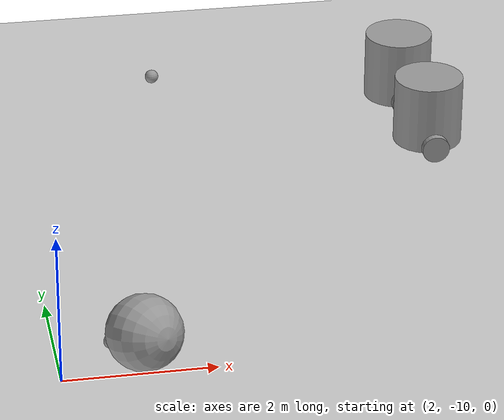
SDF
<sdf version="1.6">
 <world name="default">
  <model name="ground_plane">
   <static>1</static>
   <link name="link">
    <collision name="collision">
     <geometry><plane><normal>0 0 1</normal><size>100 100</size></plane></geometry>
     <surface>
      <contact><collide_bitmask>65535</collide_bitmask></contact>
      <friction><ode><mu>100</mu><mu2>50</mu2></ode></friction>
     </surface>
    </collision>
    <visual name="visual">
     <cast_shadows>0</cast_shadows>
     <geometry><plane><normal>0 0 1</normal><size>100 100</size></plane></geometry>
     <material>
      <script><uri>file://media/materials/scripts/gazebo.material</uri><name>Gazebo/Grey</name></script>
     </material>
    </visual>
   </link>
  </model>
  <model name="gazeboy01">
   <model name="gazeboy01">
    <link name="link_0_0">
     <pose>0 0 0.2 0 -0 0</pose>
     <inertial>
      <mass>1</mass>
      <inertia><ixx>0.145833</ixx><ixy>0</ixy><ixz>0</ixz><iyy>0.145833</iyy><iyz>0</iyz><izz>0.125</izz></inertia>
     </inertial>
     <visual name="visual">
      <geometry><cylinder><radius>0.5</radius><length>1</length></cylinder></geometry>
      <material>
       <lighting>1</lighting>
       <script><uri>file://media/materials/scripts/gazebo.material</uri><name>Gazebo/Grey</name></script>
       <shader type="pixel"><normal_map>__default__</normal_map></shader>
       <ambient>0.3 0.3 0.3 1</ambient>
       <diffuse>0.7 0.7 0.7 1</diffuse>
       <specular>0.01 0.01 0.01 1</specular>
       <emissive>0 0 0 1</emissive>
      </material>
     </visual>
     <collision name="collision">
      <geometry><cylinder><radius>0.5</radius><length>1</length></cylinder></geometry>
      <surface>
       <friction>
        <ode><mu>1</mu><mu2>1</mu2><fdir1>0 0 0</fdir1><slip1>0</slip1><slip2>0</slip2></ode>
        <torsional>
         <coefficient>1</coefficient>
         <patch_radius>0</patch_radius>
         <surface_radius>0</surface_radius>
         <use_patch_radius>1</use_patch_radius>
         <ode><slip>0</slip></ode>
        </torsional>
       </friction>
       <bounce><restitution_coefficient>0</restitution_coefficient><threshold>1e+06</threshold></bounce>
       <contact>
        <collide_without_contact>0</collide_without_contact>
        <collide_without_contact_bitmask>1</collide_without_contact_bitmask>
        <collide_bitmask>1</collide_bitmask>
        <ode>
         <soft_cfm>0</soft_cfm>
         <soft_erp>0.2</soft_erp>
         <kp>1e+13</kp>
         <kd>1</kd>
         <max_vel>0.01</max_vel>
         <min_depth>0</min_depth>
        </ode>
        <bullet>
         <split_impulse>1</split_impulse>
         <split_impulse_penetration_threshold>-0.01</split_impulse_penetration_threshold>
         <soft_cfm>0</soft_cfm>
         <soft_erp>0.2</soft_erp>
         <kp>1e+13</kp>
         <kd>1</kd>
        </bullet>
       </contact>
      </surface>
     </collision>
    </link>
    <link name="link_1">
     <pose>-0 -0.550019 -0.2 1.5707 -0 0</pose>
     <inertial>
      <mass>1</mass>
      <inertia><ixx>0.145833</ixx><ixy>0</ixy><ixz>0</ixz><iyy>0.145833</iyy><iyz>0</iyz><izz>0.125</izz></inertia>
     </inertial>
     <visual name="visual">
      <geometry><cylinder><radius>0.2</radius><length>0.1</length></cylinder></geometry>
      <material>
       <lighting>1</lighting>
       <script><uri>file://media/materials/scripts/gazebo.material</uri><name>Gazebo/Grey</name></script>
       <shader type="pixel"><normal_map>__default__</normal_map></shader>
       <ambient>0.3 0.3 0.3 1</ambient>
       <diffuse>0.7 0.7 0.7 1</diffuse>
       <specular>0.01 0.01 0.01 1</specular>
       <emissive>0 0 0 1</emissive>
      </material>
     </visual>
     <collision name="collision">
      <geometry><cylinder><radius>0.2</radius><length>0.1</length></cylinder></geometry>
      <surface>
       <friction>
        <ode><mu>1</mu><mu2>1</mu2><fdir1>0 0 0</fdir1><slip1>0</slip1><slip2>0</slip2></ode>
        <torsional>
         <coefficient>1</coefficient>
         <patch_radius>0</patch_radius>
         <surface_radius>0</surface_radius>
         <use_patch_radius>1</use_patch_radius>
         <ode><slip>0</slip></ode>
        </torsional>
       </friction>
       <bounce><restitution_coefficient>0</restitution_coefficient><threshold>1e+06</threshold></bounce>
       <contact>
        <collide_without_contact>0</collide_without_contact>
        <collide_without_contact_bitmask>1</collide_without_contact_bitmask>
        <collide_bitmask>1</collide_bitmask>
        <ode>
         <soft_cfm>0</soft_cfm>
         <soft_erp>0.2</soft_erp>
         <kp>1e+13</kp>
         <kd>1</kd>
         <max_vel>0.01</max_vel>
         <min_depth>0</min_depth>
        </ode>
        <bullet>
         <split_impulse>1</split_impulse>
         <split_impulse_penetration_threshold>-0.01</split_impulse_penetration_threshold>
         <soft_cfm>0</soft_cfm>
         <soft_erp>0.2</soft_erp>
         <kp>1e+13</kp>
         <kd>1</kd>
        </bullet>
       </contact>
      </surface>
     </collision>
    </link>
    <link name="link_1_clone">
     <pose>0 0.550019 -0.25 1.5707 -0 0</pose>
     <inertial>
      <mass>1</mass>
      <inertia><ixx>0.145833</ixx><ixy>0</ixy><ixz>0</ixz><iyy>0.145833</iyy><iyz>0</iyz><izz>0.125</izz></inertia>
     </inertial>
     <visual name="visual">
      <geometry><cylinder><radius>0.2</radius><length>0.1</length></cylinder></geometry>
      <material>
       <lighting>1</lighting>
       <script><uri>file://media/materials/scripts/gazebo.material</uri><name>Gazebo/Grey</name></script>
       <shader type="pixel"><normal_map>__default__</normal_map></shader>
       <ambient>0.3 0.3 0.3 1</ambient>
       <diffuse>0.7 0.7 0.7 1</diffuse>
       <specular>0.01 0.01 0.01 1</specular>
       <emissive>0 0 0 1</emissive>
      </material>
     </visual>
     <collision name="collision">
      <geometry><cylinder><radius>0.2</radius><length>0.1</length></cylinder></geometry>
      <surface>
       <friction>
        <ode><mu>1</mu><mu2>1</mu2><fdir1>0 0 0</fdir1><slip1>0</slip1><slip2>0</slip2></ode>
        <torsional>
         <coefficient>1</coefficient>
         <patch_radius>0</patch_radius>
         <surface_radius>0</surface_radius>
         <use_patch_radius>1</use_patch_radius>
         <ode><slip>0</slip></ode>
        </torsional>
       </friction>
       <bounce><restitution_coefficient>0</restitution_coefficient><threshold>1e+06</threshold></bounce>
       <contact>
        <collide_without_contact>0</collide_without_contact>
        <collide_without_contact_bitmask>1</collide_without_contact_bitmask>
        <collide_bitmask>1</collide_bitmask>
        <ode>
         <soft_cfm>0</soft_cfm>
         <soft_erp>0.2</soft_erp>
         <kp>1e+13</kp>
         <kd>1</kd>
         <max_vel>0.01</max_vel>
         <min_depth>0</min_depth>
        </ode>
        <bullet>
         <split_impulse>1</split_impulse>
         <split_impulse_penetration_threshold>-0.01</split_impulse_penetration_threshold>
         <soft_cfm>0</soft_cfm>
         <soft_erp>0.2</soft_erp>
         <kp>1e+13</kp>
         <kd>1</kd>
        </bullet>
       </contact>
      </surface>
     </collision>
    </link>
    <joint name="link_0_0_JOINT_0" type="revolute">
     <parent>link_0_0</parent>
     <child>link_1</child>
     <axis>
      <xyz>0 0 1</xyz>
      <use_parent_model_frame>0</use_parent_model_frame>
      <limit>
       <lower>-1.79769e+308</lower>
       <upper>1.79769e+308</upper>
       <effort>-1</effort>
       <velocity>-1</velocity>
      </limit>
      <dynamics>
       <spring_reference>0</spring_reference>
       <spring_stiffness>0</spring_stiffness>
       <damping>0</damping>
       <friction>0</friction>
      </dynamics>
     </axis>
     <physics>
      <ode><limit><cfm>0</cfm><erp>0.2</erp></limit><suspension><cfm>0</cfm><erp>0.2</erp></suspension></ode>
     </physics>
    </joint>
    <joint name="link_0_0_JOINT_2" type="revolute">
     <parent>link_0_0</parent>
     <child>link_1_clone</child>
     <axis>
      <xyz>0 0 1</xyz>
      <use_parent_model_frame>0</use_parent_model_frame>
      <limit>
       <lower>-1.79769e+308</lower>
       <upper>1.79769e+308</upper>
       <effort>-1</effort>
       <velocity>-1</velocity>
      </limit>
      <dynamics>
       <spring_reference>0</spring_reference>
       <spring_stiffness>0</spring_stiffness>
       <damping>0</damping>
       <friction>0</friction>
      </dynamics>
     </axis>
     <physics>
      <ode><limit><cfm>0</cfm><erp>0.2</erp></limit><suspension><cfm>0</cfm><erp>0.2</erp></suspension></ode>
     </physics>
    </joint>
    <static>0</static>
    <pose>0.693182 0.382612 1.06345 0 -0 0</pose>
   </model>
   <static>0</static>
   <pose>7.32618 -2.7585 -0.652899 0.045419 -0 0</pose>
  </model>
  <model name="humaball">
   <link name="link_0">
    <pose>0.08022 -0.108763 -0.179417 0 -0 0</pose>
    <inertial>
     <mass>0.0180739</mass>
     <inertia>
      <ixx>0.00037297</ixx>
      <ixy>0</ixy>
      <ixz>0</ixz>
      <iyy>0.00037297</iyy>
      <iyz>0</iyz>
      <izz>8.726e-05</izz>
     </inertia>
    </inertial>
    <visual name="visual">
     <geometry><cylinder><radius>0.0982653</radius><length>0.467615</length></cylinder></geometry>
     <material>
      <lighting>1</lighting>
      <script><uri>file://media/materials/scripts/gazebo.material</uri><name>Gazebo/Grey</name></script>
      <shader type="pixel"><normal_map>__default__</normal_map></shader>
      <ambient>0.3 0.3 0.3 1</ambient>
      <diffuse>0.7 0.7 0.7 1</diffuse>
      <specular>0.01 0.01 0.01 1</specular>
      <emissive>0 0 0 1</emissive>
     </material>
    </visual>
    <collision name="collision">
     <geometry><cylinder><radius>0.098265</radius><length>0.467615</length></cylinder></geometry>
     <surface>
      <friction>
       <ode><mu>1</mu><mu2>1</mu2><fdir1>0 0 0</fdir1><slip1>0</slip1><slip2>0</slip2></ode>
       <torsional>
        <coefficient>1</coefficient>
        <patch_radius>0</patch_radius>
        <surface_radius>0</surface_radius>
        <use_patch_radius>1</use_patch_radius>
        <ode><slip>0</slip></ode>
       </torsional>
      </friction>
      <bounce><restitution_coefficient>0</restitution_coefficient><threshold>1e+06</threshold></bounce>
      <contact>
       <collide_without_contact>0</collide_without_contact>
       <collide_without_contact_bitmask>1</collide_without_contact_bitmask>
       <collide_bitmask>1</collide_bitmask>
       <ode>
        <soft_cfm>0</soft_cfm>
        <soft_erp>0.2</soft_erp>
        <kp>1e+13</kp>
        <kd>1</kd>
        <max_vel>0.01</max_vel>
        <min_depth>0</min_depth>
       </ode>
       <bullet>
        <split_impulse>1</split_impulse>
        <split_impulse_penetration_threshold>-0.01</split_impulse_penetration_threshold>
        <soft_cfm>0</soft_cfm>
        <soft_erp>0.2</soft_erp>
        <kp>1e+13</kp>
        <kd>1</kd>
       </bullet>
      </contact>
     </surface>
    </collision>
   </link>
   <link name="link_0_clone">
    <pose>0.076453 0.143831 -0.179417 0 -0 0</pose>
    <inertial>
     <mass>0.0180739</mass>
     <inertia>
      <ixx>0.000372973</ixx>
      <ixy>0</ixy>
      <ixz>0</ixz>
      <iyy>0.000372973</iyy>
      <iyz>0</iyz>
      <izz>8.72612e-05</izz>
     </inertia>
    </inertial>
    <visual name="visual">
     <geometry><cylinder><radius>0.0982653</radius><length>0.467615</length></cylinder></geometry>
     <material>
      <lighting>1</lighting>
      <script><uri>file://media/materials/scripts/gazebo.material</uri><name>Gazebo/Grey</name></script>
      <shader type="pixel"/>
      <ambient>0.3 0.3 0.3 1</ambient>
      <diffuse>0.7 0.7 0.7 1</diffuse>
      <specular>0.01 0.01 0.01 1</specular>
      <emissive>0 0 0 1</emissive>
     </material>
    </visual>
    <collision name="collision">
     <geometry><cylinder><radius>0.098265</radius><length>0.467615</length></cylinder></geometry>
     <surface>
      <friction>
       <ode><mu>1</mu><mu2>1</mu2><fdir1>0 0 0</fdir1><slip1>0</slip1><slip2>0</slip2></ode>
       <torsional>
        <coefficient>1</coefficient>
        <patch_radius>0</patch_radius>
        <surface_radius>0</surface_radius>
        <use_patch_radius>1</use_patch_radius>
        <ode><slip>0</slip></ode>
       </torsional>
      </friction>
      <bounce><restitution_coefficient>0</restitution_coefficient><threshold>1e+06</threshold></bounce>
      <contact>
       <collide_without_contact>0</collide_without_contact>
       <collide_without_contact_bitmask>1</collide_without_contact_bitmask>
       <collide_bitmask>1</collide_bitmask>
       <ode>
        <soft_cfm>0</soft_cfm>
        <soft_erp>0.2</soft_erp>
        <kp>1e+13</kp>
        <kd>1</kd>
        <max_vel>0.01</max_vel>
        <min_depth>0</min_depth>
       </ode>
       <bullet>
        <split_impulse>1</split_impulse>
        <split_impulse_penetration_threshold>-0.01</split_impulse_penetration_threshold>
        <soft_cfm>0</soft_cfm>
        <soft_erp>0.2</soft_erp>
        <kp>1e+13</kp>
        <kd>1</kd>
       </bullet>
      </contact>
     </surface>
    </collision>
   </link>
   <link name="link_1">
    <pose>-0.156668 -0.035071 0.35883 0 -0 0</pose>
    <inertial>
     <mass>1</mass>
     <inertia><ixx>0.1</ixx><ixy>0</ixy><ixz>0</ixz><iyy>0.1</iyy><iyz>0</iyz><izz>0.1</izz></inertia>
    </inertial>
    <visual name="visual">
     <geometry><sphere><radius>0.5</radius></sphere></geometry>
     <material>
      <lighting>1</lighting>
      <script><uri>file://media/materials/scripts/gazebo.material</uri><name>Gazebo/Grey</name></script>
      <shader type="pixel"/>
      <ambient>0.3 0.3 0.3 1</ambient>
      <diffuse>0.7 0.7 0.7 1</diffuse>
      <specular>0.01 0.01 0.01 1</specular>
      <emissive>0 0 0 1</emissive>
     </material>
    </visual>
    <collision name="collision">
     <geometry><sphere><radius>0.5</radius></sphere></geometry>
     <surface>
      <friction>
       <ode><mu>1</mu><mu2>1</mu2><fdir1>0 0 0</fdir1><slip1>0</slip1><slip2>0</slip2></ode>
       <torsional>
        <coefficient>1</coefficient>
        <patch_radius>0</patch_radius>
        <surface_radius>0</surface_radius>
        <use_patch_radius>1</use_patch_radius>
        <ode><slip>0</slip></ode>
       </torsional>
      </friction>
      <bounce><restitution_coefficient>0</restitution_coefficient><threshold>1e+06</threshold></bounce>
      <contact>
       <collide_without_contact>0</collide_without_contact>
       <collide_without_contact_bitmask>1</collide_without_contact_bitmask>
       <collide_bitmask>1</collide_bitmask>
       <ode>
        <soft_cfm>0</soft_cfm>
        <soft_erp>0.2</soft_erp>
        <kp>1e+13</kp>
        <kd>1</kd>
        <max_vel>0.01</max_vel>
        <min_depth>0</min_depth>
       </ode>
       <bullet>
        <split_impulse>1</split_impulse>
        <split_impulse_penetration_threshold>-0.01</split_impulse_penetration_threshold>
        <soft_cfm>0</soft_cfm>
        <soft_erp>0.2</soft_erp>
        <kp>1e+13</kp>
        <kd>1</kd>
       </bullet>
      </contact>
     </surface>
    </collision>
   </link>
   <joint name="link_1_JOINT_1" type="fixed">
    <parent>link_1</parent>
    <child>link_0_clone</child>
    <physics>
     <ode><limit><cfm>0</cfm><erp>0.2</erp></limit><suspension><cfm>0</cfm><erp>0.2</erp></suspension></ode>
    </physics>
   </joint>
   <joint name="link_1_JOINT_2" type="fixed">
    <parent>link_1</parent>
    <child>link_0</child>
    <physics>
     <ode><limit><cfm>0</cfm><erp>0.2</erp></limit><suspension><cfm>0</cfm><erp>0.2</erp></suspension></ode>
    </physics>
   </joint>
   <static>0</static>
   <pose>2.97905 -9.52498 0.279126 0.673066 1.29655 -0.364809</pose>
  </model>
  <model name="gazeboy01_clone">
   <model name="gazeboy01">
    <link name="link_0_0">
     <pose>0 0 0.2 0 -0 0</pose>
     <inertial>
      <mass>1</mass>
      <inertia><ixx>0.145833</ixx><ixy>0</ixy><ixz>0</ixz><iyy>0.145833</iyy><iyz>0</iyz><izz>0.125</izz></inertia>
     </inertial>
     <visual name="visual">
      <geometry><cylinder><radius>0.5</radius><length>1</length></cylinder></geometry>
      <material>
       <lighting>1</lighting>
       <script><uri>file://media/materials/scripts/gazebo.material</uri><name>Gazebo/Grey</name></script>
       <shader type="pixel"><normal_map>__default__</normal_map></shader>
       <ambient>0.3 0.3 0.3 1</ambient>
       <diffuse>0.7 0.7 0.7 1</diffuse>
       <specular>0.01 0.01 0.01 1</specular>
       <emissive>0 0 0 1</emissive>
      </material>
     </visual>
     <collision name="collision">
      <geometry><cylinder><radius>0.5</radius><length>1</length></cylinder></geometry>
      <surface>
       <friction>
        <ode><mu>1</mu><mu2>1</mu2><fdir1>0 0 0</fdir1><slip1>0</slip1><slip2>0</slip2></ode>
        <torsional>
         <coefficient>1</coefficient>
         <patch_radius>0</patch_radius>
         <surface_radius>0</surface_radius>
         <use_patch_radius>1</use_patch_radius>
         <ode><slip>0</slip></ode>
        </torsional>
       </friction>
       <bounce><restitution_coefficient>0</restitution_coefficient><threshold>1e+06</threshold></bounce>
       <contact>
        <collide_without_contact>0</collide_without_contact>
        <collide_without_contact_bitmask>1</collide_without_contact_bitmask>
        <collide_bitmask>1</collide_bitmask>
        <ode>
         <soft_cfm>0</soft_cfm>
         <soft_erp>0.2</soft_erp>
         <kp>1e+13</kp>
         <kd>1</kd>
         <max_vel>0.01</max_vel>
         <min_depth>0</min_depth>
        </ode>
        <bullet>
         <split_impulse>1</split_impulse>
         <split_impulse_penetration_threshold>-0.01</split_impulse_penetration_threshold>
         <soft_cfm>0</soft_cfm>
         <soft_erp>0.2</soft_erp>
         <kp>1e+13</kp>
         <kd>1</kd>
        </bullet>
       </contact>
      </surface>
     </collision>
    </link>
    <link name="link_1">
     <pose>-0 -0.550019 -0.2 1.5707 -0 0</pose>
     <inertial>
      <mass>1</mass>
      <inertia><ixx>0.145833</ixx><ixy>0</ixy><ixz>0</ixz><iyy>0.145833</iyy><iyz>0</iyz><izz>0.125</izz></inertia>
     </inertial>
     <visual name="visual">
      <geometry><cylinder><radius>0.2</radius><length>0.1</length></cylinder></geometry>
      <material>
       <lighting>1</lighting>
       <script><uri>file://media/materials/scripts/gazebo.material</uri><name>Gazebo/Grey</name></script>
       <shader type="pixel"><normal_map>__default__</normal_map></shader>
       <ambient>0.3 0.3 0.3 1</ambient>
       <diffuse>0.7 0.7 0.7 1</diffuse>
       <specular>0.01 0.01 0.01 1</specular>
       <emissive>0 0 0 1</emissive>
      </material>
     </visual>
     <collision name="collision">
      <geometry><cylinder><radius>0.2</radius><length>0.1</length></cylinder></geometry>
      <surface>
       <friction>
        <ode><mu>1</mu><mu2>1</mu2><fdir1>0 0 0</fdir1><slip1>0</slip1><slip2>0</slip2></ode>
        <torsional>
         <coefficient>1</coefficient>
         <patch_radius>0</patch_radius>
         <surface_radius>0</surface_radius>
         <use_patch_radius>1</use_patch_radius>
         <ode><slip>0</slip></ode>
        </torsional>
       </friction>
       <bounce><restitution_coefficient>0</restitution_coefficient><threshold>1e+06</threshold></bounce>
       <contact>
        <collide_without_contact>0</collide_without_contact>
        <collide_without_contact_bitmask>1</collide_without_contact_bitmask>
        <collide_bitmask>1</collide_bitmask>
        <ode>
         <soft_cfm>0</soft_cfm>
         <soft_erp>0.2</soft_erp>
         <kp>1e+13</kp>
         <kd>1</kd>
         <max_vel>0.01</max_vel>
         <min_depth>0</min_depth>
        </ode>
        <bullet>
         <split_impulse>1</split_impulse>
         <split_impulse_penetration_threshold>-0.01</split_impulse_penetration_threshold>
         <soft_cfm>0</soft_cfm>
         <soft_erp>0.2</soft_erp>
         <kp>1e+13</kp>
         <kd>1</kd>
        </bullet>
       </contact>
      </surface>
     </collision>
    </link>
    <link name="link_1_clone">
     <pose>0 0.550019 -0.25 1.5707 -0 0</pose>
     <inertial>
      <mass>1</mass>
      <inertia><ixx>0.145833</ixx><ixy>0</ixy><ixz>0</ixz><iyy>0.145833</iyy><iyz>0</iyz><izz>0.125</izz></inertia>
     </inertial>
     <visual name="visual">
      <geometry><cylinder><radius>0.2</radius><length>0.1</length></cylinder></geometry>
      <material>
       <lighting>1</lighting>
       <script><uri>file://media/materials/scripts/gazebo.material</uri><name>Gazebo/Grey</name></script>
       <shader type="pixel"><normal_map>__default__</normal_map></shader>
       <ambient>0.3 0.3 0.3 1</ambient>
       <diffuse>0.7 0.7 0.7 1</diffuse>
       <specular>0.01 0.01 0.01 1</specular>
       <emissive>0 0 0 1</emissive>
      </material>
     </visual>
     <collision name="collision">
      <geometry><cylinder><radius>0.2</radius><length>0.1</length></cylinder></geometry>
      <surface>
       <friction>
        <ode><mu>1</mu><mu2>1</mu2><fdir1>0 0 0</fdir1><slip1>0</slip1><slip2>0</slip2></ode>
        <torsional>
         <coefficient>1</coefficient>
         <patch_radius>0</patch_radius>
         <surface_radius>0</surface_radius>
         <use_patch_radius>1</use_patch_radius>
         <ode><slip>0</slip></ode>
        </torsional>
       </friction>
       <bounce><restitution_coefficient>0</restitution_coefficient><threshold>1e+06</threshold></bounce>
       <contact>
        <collide_without_contact>0</collide_without_contact>
        <collide_without_contact_bitmask>1</collide_without_contact_bitmask>
        <collide_bitmask>1</collide_bitmask>
        <ode>
         <soft_cfm>0</soft_cfm>
         <soft_erp>0.2</soft_erp>
         <kp>1e+13</kp>
         <kd>1</kd>
         <max_vel>0.01</max_vel>
         <min_depth>0</min_depth>
        </ode>
        <bullet>
         <split_impulse>1</split_impulse>
         <split_impulse_penetration_threshold>-0.01</split_impulse_penetration_threshold>
         <soft_cfm>0</soft_cfm>
         <soft_erp>0.2</soft_erp>
         <kp>1e+13</kp>
         <kd>1</kd>
        </bullet>
       </contact>
      </surface>
     </collision>
    </link>
    <joint name="link_0_0_JOINT_0" type="revolute">
     <parent>link_0_0</parent>
     <child>link_1</child>
     <axis>
      <xyz>0 0 1</xyz>
      <use_parent_model_frame>0</use_parent_model_frame>
      <limit>
       <lower>-1.79769e+308</lower>
       <upper>1.79769e+308</upper>
       <effort>-1</effort>
       <velocity>-1</velocity>
      </limit>
      <dynamics>
       <spring_reference>0</spring_reference>
       <spring_stiffness>0</spring_stiffness>
       <damping>0</damping>
       <friction>0</friction>
      </dynamics>
     </axis>
     <physics>
      <ode><limit><cfm>0</cfm><erp>0.2</erp></limit><suspension><cfm>0</cfm><erp>0.2</erp></suspension></ode>
     </physics>
    </joint>
    <joint name="link_0_0_JOINT_2" type="revolute">
     <parent>link_0_0</parent>
     <child>link_1_clone</child>
     <axis>
      <xyz>0 0 1</xyz>
      <use_parent_model_frame>0</use_parent_model_frame>
      <limit>
       <lower>-1.79769e+308</lower>
       <upper>1.79769e+308</upper>
       <effort>-1</effort>
       <velocity>-1</velocity>
      </limit>
      <dynamics>
       <spring_reference>0</spring_reference>
       <spring_stiffness>0</spring_stiffness>
       <damping>0</damping>
       <friction>0</friction>
      </dynamics>
     </axis>
     <physics>
      <ode><limit><cfm>0</cfm><erp>0.2</erp></limit><suspension><cfm>0</cfm><erp>0.2</erp></suspension></ode>
     </physics>
    </joint>
    <static>0</static>
    <pose>0.693182 0.382612 1.06345 0 -0 0</pose>
   </model>
   <static>0</static>
   <pose>7.40117 -4.42182 -0.652899 0.045419 -0 0</pose>
  </model>
  <model name="my_ball">
   <link name="link_0">
    <inertial>
     <mass>1</mass>
     <inertia><ixx>0.1</ixx><ixy>0</ixy><ixz>0</ixz><iyy>0.1</iyy><iyz>0</iyz><izz>0.1</izz></inertia>
    </inertial>
    <visual name="visual">
     <geometry><sphere><radius>0.1</radius></sphere></geometry>
     <material>
      <lighting>1</lighting>
      <script><uri>file://media/materials/scripts/gazebo.material</uri><name>Gazebo/Grey</name></script>
      <shader type="pixel"><normal_map>__default__</normal_map></shader>
      <ambient>1 1 1 1</ambient>
      <diffuse>1 1 1 1</diffuse>
      <specular>1 1 1 1</specular>
      <emissive>1 1 1 1</emissive>
     </material>
    </visual>
    <collision name="collision">
     <geometry><sphere><radius>0.1</radius></sphere></geometry>
     <surface>
      <friction>
       <ode><mu>1</mu><mu2>1</mu2><fdir1>0 0 0</fdir1><slip1>0</slip1><slip2>0</slip2></ode>
       <torsional>
        <coefficient>1</coefficient>
        <patch_radius>0</patch_radius>
        <surface_radius>0</surface_radius>
        <use_patch_radius>1</use_patch_radius>
        <ode><slip>0</slip></ode>
       </torsional>
      </friction>
      <bounce><restitution_coefficient>0</restitution_coefficient><threshold>1e+06</threshold></bounce>
      <contact>
       <collide_without_contact>0</collide_without_contact>
       <collide_without_contact_bitmask>1</collide_without_contact_bitmask>
       <collide_bitmask>1</collide_bitmask>
       <ode>
        <soft_cfm>0</soft_cfm>
        <soft_erp>0.2</soft_erp>
        <kp>1e+13</kp>
        <kd>1</kd>
        <max_vel>0.01</max_vel>
        <min_depth>0</min_depth>
       </ode>
       <bullet>
        <split_impulse>1</split_impulse>
        <split_impulse_penetration_threshold>-0.01</split_impulse_penetration_threshold>
        <soft_cfm>0</soft_cfm>
        <soft_erp>0.2</soft_erp>
        <kp>1e+13</kp>
        <kd>1</kd>
       </bullet>
      </contact>
     </surface>
    </collision>
   </link>
   <static>0</static>
   <pose>4.30132 -1.97619 0.5 0 -0 0</pose>
  </model>
 </world>
</sdf>
